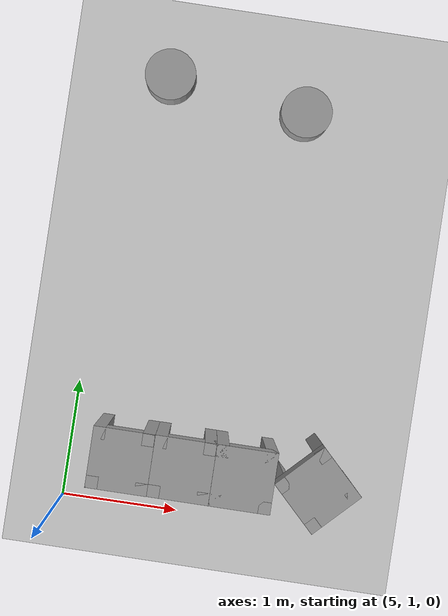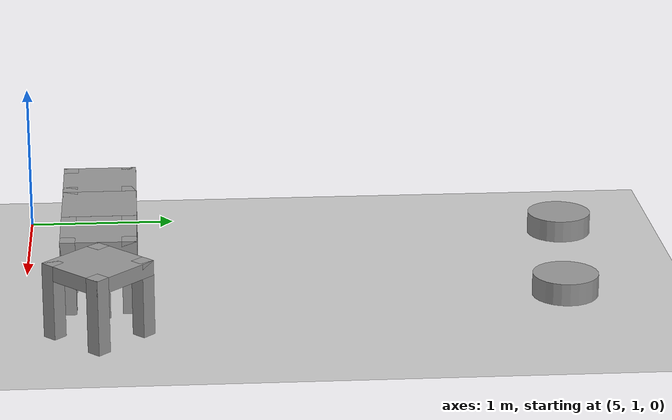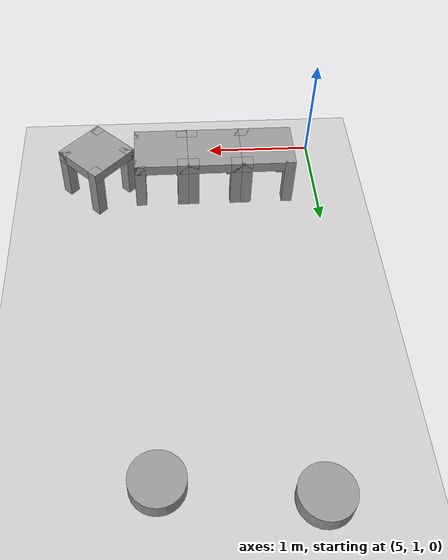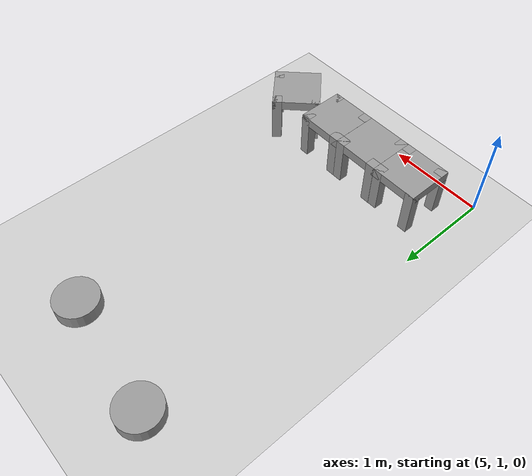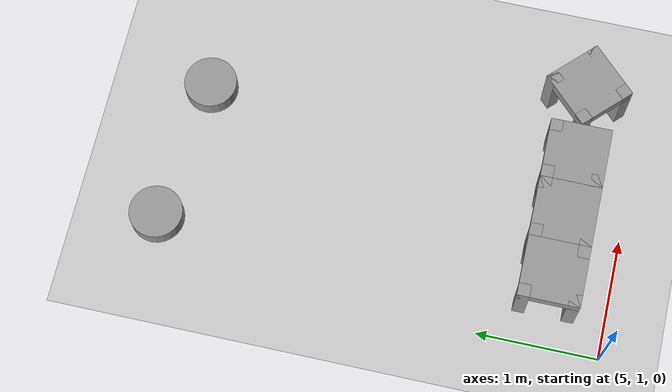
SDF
<sdf version="1.6">
 <world name="default">
  <model name="ground_plane">
   <pose>6.5 0 0 0 -0 0</pose>
   <static>1</static>
   <link name="link">
    <collision name="collision">
     <geometry><plane><normal>0 0 1</normal><size>100 100</size></plane></geometry>
     <surface>
      <contact><collide_bitmask>65535</collide_bitmask></contact>
      <friction><ode><mu>100</mu><mu2>50</mu2></ode></friction>
     </surface>
    </collision>
    <visual name="visual">
     <cast_shadows>0</cast_shadows>
     <geometry><plane><normal>0 0 1</normal><size>100 100</size></plane></geometry>
     <material>
      <script><uri>file://media/materials/scripts/gazebo.material</uri><name>Gazebo/Grey</name></script>
     </material>
    </visual>
   </link>
  </model>
  <model name="Untitled_12">
   <link name="link_0">
    <inertial>
     <mass>1</mass>
     <inertia><ixx>0.145833</ixx><ixy>0</ixy><ixz>0</ixz><iyy>0.145833</iyy><iyz>0</iyz><izz>0.125</izz></inertia>
    </inertial>
    <visual name="visual">
     <geometry><cylinder><radius>0.22</radius><length>0.15</length></cylinder></geometry>
     <material>
      <lighting>1</lighting>
      <script><uri>file://media/materials/scripts/gazebo.material</uri><name>Gazebo/Grey</name></script>
      <shader type="pixel"><normal_map>__default__</normal_map></shader>
      <ambient>0.3 0.3 0.3 1</ambient>
      <diffuse>0.7 0.7 0.7 1</diffuse>
      <specular>0.01 0.01 0.01 1</specular>
      <emissive>0 0 0 1</emissive>
     </material>
    </visual>
    <collision name="collision">
     <geometry><cylinder><radius>0.22</radius><length>0.15</length></cylinder></geometry>
     <surface>
      <friction>
       <ode><mu>1</mu><mu2>1</mu2><fdir1>0 0 0</fdir1><slip1>0</slip1><slip2>0</slip2></ode>
       <torsional>
        <coefficient>1</coefficient>
        <patch_radius>0</patch_radius>
        <surface_radius>0</surface_radius>
        <use_patch_radius>1</use_patch_radius>
        <ode><slip>0</slip></ode>
       </torsional>
      </friction>
      <bounce><restitution_coefficient>0</restitution_coefficient><threshold>1e+06</threshold></bounce>
      <contact>
       <collide_without_contact>0</collide_without_contact>
       <collide_without_contact_bitmask>1</collide_without_contact_bitmask>
       <collide_bitmask>1</collide_bitmask>
       <ode>
        <soft_cfm>0</soft_cfm>
        <soft_erp>0.2</soft_erp>
        <kp>1e+13</kp>
        <kd>1</kd>
        <max_vel>0.01</max_vel>
        <min_depth>0</min_depth>
       </ode>
       <bullet>
        <split_impulse>1</split_impulse>
        <split_impulse_penetration_threshold>-0.01</split_impulse_penetration_threshold>
        <soft_cfm>0</soft_cfm>
        <soft_erp>0.2</soft_erp>
        <kp>1e+13</kp>
        <kd>1</kd>
       </bullet>
      </contact>
     </surface>
    </collision>
   </link>
   <static>0</static>
   <pose>5.4 4.73003 0.074993 1e-06 1e-06 0</pose>
  </model>
  <model name="Untitled_13">
   <link name="link_0">
    <inertial>
     <mass>1</mass>
     <inertia><ixx>0.145833</ixx><ixy>0</ixy><ixz>0</ixz><iyy>0.145833</iyy><iyz>0</iyz><izz>0.125</izz></inertia>
    </inertial>
    <visual name="visual">
     <geometry><cylinder><radius>0.22</radius><length>0.15</length></cylinder></geometry>
     <material>
      <lighting>1</lighting>
      <script><uri>file://media/materials/scripts/gazebo.material</uri><name>Gazebo/Grey</name></script>
      <shader type="pixel"><normal_map>__default__</normal_map></shader>
      <ambient>0.3 0.3 0.3 1</ambient>
      <diffuse>0.7 0.7 0.7 1</diffuse>
      <specular>0.01 0.01 0.01 1</specular>
      <emissive>0 0 0 1</emissive>
     </material>
    </visual>
    <collision name="collision">
     <geometry><cylinder><radius>0.22</radius><length>0.15</length></cylinder></geometry>
     <surface>
      <friction>
       <ode><mu>1</mu><mu2>1</mu2><fdir1>0 0 0</fdir1><slip1>0</slip1><slip2>0</slip2></ode>
       <torsional>
        <coefficient>1</coefficient>
        <patch_radius>0</patch_radius>
        <surface_radius>0</surface_radius>
        <use_patch_radius>1</use_patch_radius>
        <ode><slip>0</slip></ode>
       </torsional>
      </friction>
      <bounce><restitution_coefficient>0</restitution_coefficient><threshold>1e+06</threshold></bounce>
      <contact>
       <collide_without_contact>0</collide_without_contact>
       <collide_without_contact_bitmask>1</collide_without_contact_bitmask>
       <collide_bitmask>1</collide_bitmask>
       <ode>
        <soft_cfm>0</soft_cfm>
        <soft_erp>0.2</soft_erp>
        <kp>1e+13</kp>
        <kd>1</kd>
        <max_vel>0.01</max_vel>
        <min_depth>0</min_depth>
       </ode>
       <bullet>
        <split_impulse>1</split_impulse>
        <split_impulse_penetration_threshold>-0.01</split_impulse_penetration_threshold>
        <soft_cfm>0</soft_cfm>
        <soft_erp>0.2</soft_erp>
        <kp>1e+13</kp>
        <kd>1</kd>
       </bullet>
      </contact>
     </surface>
    </collision>
   </link>
   <static>0</static>
   <pose>6.6 4.58228 0.074993 1e-06 1e-06 0</pose>
  </model>
  <model name="little_table_SF">
   <link name="link_0">
    <pose>-0.2 -0.2 -0.04 0 -0 0</pose>
    <inertial>
     <mass>1</mass>
     <inertia>
      <ixx>0.166667</ixx>
      <ixy>0</ixy>
      <ixz>0</ixz>
      <iyy>0.166667</iyy>
      <iyz>0</iyz>
      <izz>0.166667</izz>
     </inertia>
    </inertial>
    <visual name="visual">
     <geometry><box><size>0.1 0.1 0.5</size></box></geometry>
     <material>
      <lighting>1</lighting>
      <script><uri>file://media/materials/scripts/gazebo.material</uri><name>Gazebo/Grey</name></script>
      <shader type="pixel"><normal_map>__default__</normal_map></shader>
      <ambient>0.3 0.3 0.3 1</ambient>
      <diffuse>0.7 0.7 0.7 1</diffuse>
      <specular>0.01 0.01 0.01 1</specular>
      <emissive>0 0 0 1</emissive>
     </material>
    </visual>
    <collision name="collision">
     <geometry><box><size>0.1 0.1 0.5</size></box></geometry>
     <surface>
      <friction>
       <ode><mu>1</mu><mu2>1</mu2><fdir1>0 0 0</fdir1><slip1>0</slip1><slip2>0</slip2></ode>
       <torsional>
        <coefficient>1</coefficient>
        <patch_radius>0</patch_radius>
        <surface_radius>0</surface_radius>
        <use_patch_radius>1</use_patch_radius>
        <ode><slip>0</slip></ode>
       </torsional>
      </friction>
      <bounce><restitution_coefficient>0</restitution_coefficient><threshold>1e+06</threshold></bounce>
      <contact>
       <collide_without_contact>0</collide_without_contact>
       <collide_without_contact_bitmask>1</collide_without_contact_bitmask>
       <collide_bitmask>1</collide_bitmask>
       <ode>
        <soft_cfm>0</soft_cfm>
        <soft_erp>0.2</soft_erp>
        <kp>1e+13</kp>
        <kd>1</kd>
        <max_vel>0.01</max_vel>
        <min_depth>0</min_depth>
       </ode>
       <bullet>
        <split_impulse>1</split_impulse>
        <split_impulse_penetration_threshold>-0.01</split_impulse_penetration_threshold>
        <soft_cfm>0</soft_cfm>
        <soft_erp>0.2</soft_erp>
        <kp>1e+13</kp>
        <kd>1</kd>
       </bullet>
      </contact>
     </surface>
    </collision>
   </link>
   <link name="link_0_clone">
    <pose>0.2 -0.2 -0.04 0 -0 0</pose>
    <inertial>
     <mass>1</mass>
     <inertia>
      <ixx>0.166667</ixx>
      <ixy>0</ixy>
      <ixz>0</ixz>
      <iyy>0.166667</iyy>
      <iyz>0</iyz>
      <izz>0.166667</izz>
     </inertia>
    </inertial>
    <visual name="visual">
     <geometry><box><size>0.1 0.1 0.5</size></box></geometry>
     <material>
      <lighting>1</lighting>
      <script><uri>file://media/materials/scripts/gazebo.material</uri><name>Gazebo/Grey</name></script>
      <shader type="pixel"><normal_map>__default__</normal_map></shader>
      <ambient>0.3 0.3 0.3 1</ambient>
      <diffuse>0.7 0.7 0.7 1</diffuse>
      <specular>0.01 0.01 0.01 1</specular>
      <emissive>0 0 0 1</emissive>
     </material>
    </visual>
    <collision name="collision">
     <geometry><box><size>0.1 0.1 0.5</size></box></geometry>
     <surface>
      <friction>
       <ode><mu>1</mu><mu2>1</mu2><fdir1>0 0 0</fdir1><slip1>0</slip1><slip2>0</slip2></ode>
       <torsional>
        <coefficient>1</coefficient>
        <patch_radius>0</patch_radius>
        <surface_radius>0</surface_radius>
        <use_patch_radius>1</use_patch_radius>
        <ode><slip>0</slip></ode>
       </torsional>
      </friction>
      <bounce><restitution_coefficient>0</restitution_coefficient><threshold>1e+06</threshold></bounce>
      <contact>
       <collide_without_contact>0</collide_without_contact>
       <collide_without_contact_bitmask>1</collide_without_contact_bitmask>
       <collide_bitmask>1</collide_bitmask>
       <ode>
        <soft_cfm>0</soft_cfm>
        <soft_erp>0.2</soft_erp>
        <kp>1e+13</kp>
        <kd>1</kd>
        <max_vel>0.01</max_vel>
        <min_depth>0</min_depth>
       </ode>
       <bullet>
        <split_impulse>1</split_impulse>
        <split_impulse_penetration_threshold>-0.01</split_impulse_penetration_threshold>
        <soft_cfm>0</soft_cfm>
        <soft_erp>0.2</soft_erp>
        <kp>1e+13</kp>
        <kd>1</kd>
       </bullet>
      </contact>
     </surface>
    </collision>
   </link>
   <link name="link_0_clone_0">
    <pose>-0.2 0.2 -0.04 0 -0 0</pose>
    <inertial>
     <mass>1</mass>
     <inertia>
      <ixx>0.166667</ixx>
      <ixy>0</ixy>
      <ixz>0</ixz>
      <iyy>0.166667</iyy>
      <iyz>0</iyz>
      <izz>0.166667</izz>
     </inertia>
    </inertial>
    <visual name="visual">
     <geometry><box><size>0.1 0.1 0.5</size></box></geometry>
     <material>
      <lighting>1</lighting>
      <script><uri>file://media/materials/scripts/gazebo.material</uri><name>Gazebo/Grey</name></script>
      <shader type="pixel"><normal_map>__default__</normal_map></shader>
      <ambient>0.3 0.3 0.3 1</ambient>
      <diffuse>0.7 0.7 0.7 1</diffuse>
      <specular>0.01 0.01 0.01 1</specular>
      <emissive>0 0 0 1</emissive>
     </material>
    </visual>
    <collision name="collision">
     <geometry><box><size>0.1 0.1 0.5</size></box></geometry>
     <surface>
      <friction>
       <ode><mu>1</mu><mu2>1</mu2><fdir1>0 0 0</fdir1><slip1>0</slip1><slip2>0</slip2></ode>
       <torsional>
        <coefficient>1</coefficient>
        <patch_radius>0</patch_radius>
        <surface_radius>0</surface_radius>
        <use_patch_radius>1</use_patch_radius>
        <ode><slip>0</slip></ode>
       </torsional>
      </friction>
      <bounce><restitution_coefficient>0</restitution_coefficient><threshold>1e+06</threshold></bounce>
      <contact>
       <collide_without_contact>0</collide_without_contact>
       <collide_without_contact_bitmask>1</collide_without_contact_bitmask>
       <collide_bitmask>1</collide_bitmask>
       <ode>
        <soft_cfm>0</soft_cfm>
        <soft_erp>0.2</soft_erp>
        <kp>1e+13</kp>
        <kd>1</kd>
        <max_vel>0.01</max_vel>
        <min_depth>0</min_depth>
       </ode>
       <bullet>
        <split_impulse>1</split_impulse>
        <split_impulse_penetration_threshold>-0.01</split_impulse_penetration_threshold>
        <soft_cfm>0</soft_cfm>
        <soft_erp>0.2</soft_erp>
        <kp>1e+13</kp>
        <kd>1</kd>
       </bullet>
      </contact>
     </surface>
    </collision>
   </link>
   <link name="link_0_clone_1">
    <pose>0.2 0.2 -0.04 0 -0 0</pose>
    <inertial>
     <mass>1</mass>
     <inertia>
      <ixx>0.166667</ixx>
      <ixy>0</ixy>
      <ixz>0</ixz>
      <iyy>0.166667</iyy>
      <iyz>0</iyz>
      <izz>0.166667</izz>
     </inertia>
    </inertial>
    <visual name="visual">
     <geometry><box><size>0.1 0.1 0.5</size></box></geometry>
     <material>
      <lighting>1</lighting>
      <script><uri>file://media/materials/scripts/gazebo.material</uri><name>Gazebo/Grey</name></script>
      <shader type="pixel"><normal_map>__default__</normal_map></shader>
      <ambient>0.3 0.3 0.3 1</ambient>
      <diffuse>0.7 0.7 0.7 1</diffuse>
      <specular>0.01 0.01 0.01 1</specular>
      <emissive>0 0 0 1</emissive>
     </material>
    </visual>
    <collision name="collision">
     <geometry><box><size>0.1 0.1 0.5</size></box></geometry>
     <surface>
      <friction>
       <ode><mu>1</mu><mu2>1</mu2><fdir1>0 0 0</fdir1><slip1>0</slip1><slip2>0</slip2></ode>
       <torsional>
        <coefficient>1</coefficient>
        <patch_radius>0</patch_radius>
        <surface_radius>0</surface_radius>
        <use_patch_radius>1</use_patch_radius>
        <ode><slip>0</slip></ode>
       </torsional>
      </friction>
      <bounce><restitution_coefficient>0</restitution_coefficient><threshold>1e+06</threshold></bounce>
      <contact>
       <collide_without_contact>0</collide_without_contact>
       <collide_without_contact_bitmask>1</collide_without_contact_bitmask>
       <collide_bitmask>1</collide_bitmask>
       <ode>
        <soft_cfm>0</soft_cfm>
        <soft_erp>0.2</soft_erp>
        <kp>1e+13</kp>
        <kd>1</kd>
        <max_vel>0.01</max_vel>
        <min_depth>0</min_depth>
       </ode>
       <bullet>
        <split_impulse>1</split_impulse>
        <split_impulse_penetration_threshold>-0.01</split_impulse_penetration_threshold>
        <soft_cfm>0</soft_cfm>
        <soft_erp>0.2</soft_erp>
        <kp>1e+13</kp>
        <kd>1</kd>
       </bullet>
      </contact>
     </surface>
    </collision>
   </link>
   <link name="link_1">
    <pose>0 -0 0.16 0 -0 0</pose>
    <inertial>
     <mass>1</mass>
     <inertia>
      <ixx>0.166667</ixx>
      <ixy>0</ixy>
      <ixz>0</ixz>
      <iyy>0.166667</iyy>
      <iyz>0</iyz>
      <izz>0.166667</izz>
     </inertia>
    </inertial>
    <visual name="visual">
     <geometry><box><size>0.5 0.5 0.1</size></box></geometry>
     <material>
      <lighting>1</lighting>
      <script><uri>file://media/materials/scripts/gazebo.material</uri><name>Gazebo/Grey</name></script>
      <shader type="pixel"><normal_map>__default__</normal_map></shader>
      <ambient>0.3 0.3 0.3 1</ambient>
      <diffuse>0.7 0.7 0.7 1</diffuse>
      <specular>0.01 0.01 0.01 1</specular>
      <emissive>0 0 0 1</emissive>
     </material>
    </visual>
    <collision name="collision">
     <geometry><box><size>0.5 0.5 0.1</size></box></geometry>
     <surface>
      <friction>
       <ode><mu>1</mu><mu2>1</mu2><fdir1>0 0 0</fdir1><slip1>0</slip1><slip2>0</slip2></ode>
       <torsional>
        <coefficient>1</coefficient>
        <patch_radius>0</patch_radius>
        <surface_radius>0</surface_radius>
        <use_patch_radius>1</use_patch_radius>
        <ode><slip>0</slip></ode>
       </torsional>
      </friction>
      <bounce><restitution_coefficient>0</restitution_coefficient><threshold>1e+06</threshold></bounce>
      <contact>
       <collide_without_contact>0</collide_without_contact>
       <collide_without_contact_bitmask>1</collide_without_contact_bitmask>
       <collide_bitmask>1</collide_bitmask>
       <ode>
        <soft_cfm>0</soft_cfm>
        <soft_erp>0.2</soft_erp>
        <kp>1e+13</kp>
        <kd>1</kd>
        <max_vel>0.01</max_vel>
        <min_depth>0</min_depth>
       </ode>
       <bullet>
        <split_impulse>1</split_impulse>
        <split_impulse_penetration_threshold>-0.01</split_impulse_penetration_threshold>
        <soft_cfm>0</soft_cfm>
        <soft_erp>0.2</soft_erp>
        <kp>1e+13</kp>
        <kd>1</kd>
       </bullet>
      </contact>
     </surface>
    </collision>
   </link>
   <joint name="link_1_JOINT_0" type="fixed">
    <parent>link_1</parent>
    <child>link_0_clone_0</child>
    <physics>
     <ode><limit><cfm>0</cfm><erp>0.2</erp></limit><suspension><cfm>0</cfm><erp>0.2</erp></suspension></ode>
    </physics>
   </joint>
   <joint name="link_1_JOINT_1" type="fixed">
    <parent>link_1</parent>
    <child>link_0</child>
    <physics>
     <ode><limit><cfm>0</cfm><erp>0.2</erp></limit><suspension><cfm>0</cfm><erp>0.2</erp></suspension></ode>
    </physics>
   </joint>
   <joint name="link_1_JOINT_2" type="fixed">
    <parent>link_1</parent>
    <child>link_0_clone_1</child>
    <physics>
     <ode><limit><cfm>0</cfm><erp>0.2</erp></limit><suspension><cfm>0</cfm><erp>0.2</erp></suspension></ode>
    </physics>
   </joint>
   <joint name="link_1_JOINT_3" type="fixed">
    <parent>link_1</parent>
    <child>link_0_clone</child>
    <physics>
     <ode><limit><cfm>0</cfm><erp>0.2</erp></limit><suspension><cfm>0</cfm><erp>0.2</erp></suspension></ode>
    </physics>
   </joint>
   <static>1</static>
   <pose>5.49896 1.49964 0.29 1e-06 -1e-06 -2.2e-05</pose>
  </model>
  <model name="little_table_SF_clone">
   <link name="link_0">
    <pose>-0.2 -0.2 -0.04 0 -0 0</pose>
    <inertial>
     <mass>1</mass>
     <inertia>
      <ixx>0.166667</ixx>
      <ixy>0</ixy>
      <ixz>0</ixz>
      <iyy>0.166667</iyy>
      <iyz>0</iyz>
      <izz>0.166667</izz>
     </inertia>
    </inertial>
    <visual name="visual">
     <geometry><box><size>0.1 0.1 0.5</size></box></geometry>
     <material>
      <lighting>1</lighting>
      <script><uri>file://media/materials/scripts/gazebo.material</uri><name>Gazebo/Grey</name></script>
      <shader type="pixel"><normal_map>__default__</normal_map></shader>
      <ambient>0.3 0.3 0.3 1</ambient>
      <diffuse>0.7 0.7 0.7 1</diffuse>
      <specular>0.01 0.01 0.01 1</specular>
      <emissive>0 0 0 1</emissive>
     </material>
    </visual>
    <collision name="collision">
     <geometry><box><size>0.1 0.1 0.5</size></box></geometry>
     <surface>
      <friction>
       <ode><mu>1</mu><mu2>1</mu2><fdir1>0 0 0</fdir1><slip1>0</slip1><slip2>0</slip2></ode>
       <torsional>
        <coefficient>1</coefficient>
        <patch_radius>0</patch_radius>
        <surface_radius>0</surface_radius>
        <use_patch_radius>1</use_patch_radius>
        <ode><slip>0</slip></ode>
       </torsional>
      </friction>
      <bounce><restitution_coefficient>0</restitution_coefficient><threshold>1e+06</threshold></bounce>
      <contact>
       <collide_without_contact>0</collide_without_contact>
       <collide_without_contact_bitmask>1</collide_without_contact_bitmask>
       <collide_bitmask>1</collide_bitmask>
       <ode>
        <soft_cfm>0</soft_cfm>
        <soft_erp>0.2</soft_erp>
        <kp>1e+13</kp>
        <kd>1</kd>
        <max_vel>0.01</max_vel>
        <min_depth>0</min_depth>
       </ode>
       <bullet>
        <split_impulse>1</split_impulse>
        <split_impulse_penetration_threshold>-0.01</split_impulse_penetration_threshold>
        <soft_cfm>0</soft_cfm>
        <soft_erp>0.2</soft_erp>
        <kp>1e+13</kp>
        <kd>1</kd>
       </bullet>
      </contact>
     </surface>
    </collision>
   </link>
   <link name="link_0_clone">
    <pose>0.2 -0.2 -0.04 0 -0 0</pose>
    <inertial>
     <mass>1</mass>
     <inertia>
      <ixx>0.166667</ixx>
      <ixy>0</ixy>
      <ixz>0</ixz>
      <iyy>0.166667</iyy>
      <iyz>0</iyz>
      <izz>0.166667</izz>
     </inertia>
    </inertial>
    <visual name="visual">
     <geometry><box><size>0.1 0.1 0.5</size></box></geometry>
     <material>
      <lighting>1</lighting>
      <script><uri>file://media/materials/scripts/gazebo.material</uri><name>Gazebo/Grey</name></script>
      <shader type="pixel"><normal_map>__default__</normal_map></shader>
      <ambient>0.3 0.3 0.3 1</ambient>
      <diffuse>0.7 0.7 0.7 1</diffuse>
      <specular>0.01 0.01 0.01 1</specular>
      <emissive>0 0 0 1</emissive>
     </material>
    </visual>
    <collision name="collision">
     <geometry><box><size>0.1 0.1 0.5</size></box></geometry>
     <surface>
      <friction>
       <ode><mu>1</mu><mu2>1</mu2><fdir1>0 0 0</fdir1><slip1>0</slip1><slip2>0</slip2></ode>
       <torsional>
        <coefficient>1</coefficient>
        <patch_radius>0</patch_radius>
        <surface_radius>0</surface_radius>
        <use_patch_radius>1</use_patch_radius>
        <ode><slip>0</slip></ode>
       </torsional>
      </friction>
      <bounce><restitution_coefficient>0</restitution_coefficient><threshold>1e+06</threshold></bounce>
      <contact>
       <collide_without_contact>0</collide_without_contact>
       <collide_without_contact_bitmask>1</collide_without_contact_bitmask>
       <collide_bitmask>1</collide_bitmask>
       <ode>
        <soft_cfm>0</soft_cfm>
        <soft_erp>0.2</soft_erp>
        <kp>1e+13</kp>
        <kd>1</kd>
        <max_vel>0.01</max_vel>
        <min_depth>0</min_depth>
       </ode>
       <bullet>
        <split_impulse>1</split_impulse>
        <split_impulse_penetration_threshold>-0.01</split_impulse_penetration_threshold>
        <soft_cfm>0</soft_cfm>
        <soft_erp>0.2</soft_erp>
        <kp>1e+13</kp>
        <kd>1</kd>
       </bullet>
      </contact>
     </surface>
    </collision>
   </link>
   <link name="link_0_clone_0">
    <pose>-0.2 0.2 -0.04 0 -0 0</pose>
    <inertial>
     <mass>1</mass>
     <inertia>
      <ixx>0.166667</ixx>
      <ixy>0</ixy>
      <ixz>0</ixz>
      <iyy>0.166667</iyy>
      <iyz>0</iyz>
      <izz>0.166667</izz>
     </inertia>
    </inertial>
    <visual name="visual">
     <geometry><box><size>0.1 0.1 0.5</size></box></geometry>
     <material>
      <lighting>1</lighting>
      <script><uri>file://media/materials/scripts/gazebo.material</uri><name>Gazebo/Grey</name></script>
      <shader type="pixel"><normal_map>__default__</normal_map></shader>
      <ambient>0.3 0.3 0.3 1</ambient>
      <diffuse>0.7 0.7 0.7 1</diffuse>
      <specular>0.01 0.01 0.01 1</specular>
      <emissive>0 0 0 1</emissive>
     </material>
    </visual>
    <collision name="collision">
     <geometry><box><size>0.1 0.1 0.5</size></box></geometry>
     <surface>
      <friction>
       <ode><mu>1</mu><mu2>1</mu2><fdir1>0 0 0</fdir1><slip1>0</slip1><slip2>0</slip2></ode>
       <torsional>
        <coefficient>1</coefficient>
        <patch_radius>0</patch_radius>
        <surface_radius>0</surface_radius>
        <use_patch_radius>1</use_patch_radius>
        <ode><slip>0</slip></ode>
       </torsional>
      </friction>
      <bounce><restitution_coefficient>0</restitution_coefficient><threshold>1e+06</threshold></bounce>
      <contact>
       <collide_without_contact>0</collide_without_contact>
       <collide_without_contact_bitmask>1</collide_without_contact_bitmask>
       <collide_bitmask>1</collide_bitmask>
       <ode>
        <soft_cfm>0</soft_cfm>
        <soft_erp>0.2</soft_erp>
        <kp>1e+13</kp>
        <kd>1</kd>
        <max_vel>0.01</max_vel>
        <min_depth>0</min_depth>
       </ode>
       <bullet>
        <split_impulse>1</split_impulse>
        <split_impulse_penetration_threshold>-0.01</split_impulse_penetration_threshold>
        <soft_cfm>0</soft_cfm>
        <soft_erp>0.2</soft_erp>
        <kp>1e+13</kp>
        <kd>1</kd>
       </bullet>
      </contact>
     </surface>
    </collision>
   </link>
   <link name="link_0_clone_1">
    <pose>0.2 0.2 -0.04 0 -0 0</pose>
    <inertial>
     <mass>1</mass>
     <inertia>
      <ixx>0.166667</ixx>
      <ixy>0</ixy>
      <ixz>0</ixz>
      <iyy>0.166667</iyy>
      <iyz>0</iyz>
      <izz>0.166667</izz>
     </inertia>
    </inertial>
    <visual name="visual">
     <geometry><box><size>0.1 0.1 0.5</size></box></geometry>
     <material>
      <lighting>1</lighting>
      <script><uri>file://media/materials/scripts/gazebo.material</uri><name>Gazebo/Grey</name></script>
      <shader type="pixel"><normal_map>__default__</normal_map></shader>
      <ambient>0.3 0.3 0.3 1</ambient>
      <diffuse>0.7 0.7 0.7 1</diffuse>
      <specular>0.01 0.01 0.01 1</specular>
      <emissive>0 0 0 1</emissive>
     </material>
    </visual>
    <collision name="collision">
     <geometry><box><size>0.1 0.1 0.5</size></box></geometry>
     <surface>
      <friction>
       <ode><mu>1</mu><mu2>1</mu2><fdir1>0 0 0</fdir1><slip1>0</slip1><slip2>0</slip2></ode>
       <torsional>
        <coefficient>1</coefficient>
        <patch_radius>0</patch_radius>
        <surface_radius>0</surface_radius>
        <use_patch_radius>1</use_patch_radius>
        <ode><slip>0</slip></ode>
       </torsional>
      </friction>
      <bounce><restitution_coefficient>0</restitution_coefficient><threshold>1e+06</threshold></bounce>
      <contact>
       <collide_without_contact>0</collide_without_contact>
       <collide_without_contact_bitmask>1</collide_without_contact_bitmask>
       <collide_bitmask>1</collide_bitmask>
       <ode>
        <soft_cfm>0</soft_cfm>
        <soft_erp>0.2</soft_erp>
        <kp>1e+13</kp>
        <kd>1</kd>
        <max_vel>0.01</max_vel>
        <min_depth>0</min_depth>
       </ode>
       <bullet>
        <split_impulse>1</split_impulse>
        <split_impulse_penetration_threshold>-0.01</split_impulse_penetration_threshold>
        <soft_cfm>0</soft_cfm>
        <soft_erp>0.2</soft_erp>
        <kp>1e+13</kp>
        <kd>1</kd>
       </bullet>
      </contact>
     </surface>
    </collision>
   </link>
   <link name="link_1">
    <pose>0 -0 0.16 0 -0 0</pose>
    <inertial>
     <mass>1</mass>
     <inertia>
      <ixx>0.166667</ixx>
      <ixy>0</ixy>
      <ixz>0</ixz>
      <iyy>0.166667</iyy>
      <iyz>0</iyz>
      <izz>0.166667</izz>
     </inertia>
    </inertial>
    <visual name="visual">
     <geometry><box><size>0.5 0.5 0.1</size></box></geometry>
     <material>
      <lighting>1</lighting>
      <script><uri>file://media/materials/scripts/gazebo.material</uri><name>Gazebo/Grey</name></script>
      <shader type="pixel"><normal_map>__default__</normal_map></shader>
      <ambient>0.3 0.3 0.3 1</ambient>
      <diffuse>0.7 0.7 0.7 1</diffuse>
      <specular>0.01 0.01 0.01 1</specular>
      <emissive>0 0 0 1</emissive>
     </material>
    </visual>
    <collision name="collision">
     <geometry><box><size>0.5 0.5 0.1</size></box></geometry>
     <surface>
      <friction>
       <ode><mu>1</mu><mu2>1</mu2><fdir1>0 0 0</fdir1><slip1>0</slip1><slip2>0</slip2></ode>
       <torsional>
        <coefficient>1</coefficient>
        <patch_radius>0</patch_radius>
        <surface_radius>0</surface_radius>
        <use_patch_radius>1</use_patch_radius>
        <ode><slip>0</slip></ode>
       </torsional>
      </friction>
      <bounce><restitution_coefficient>0</restitution_coefficient><threshold>1e+06</threshold></bounce>
      <contact>
       <collide_without_contact>0</collide_without_contact>
       <collide_without_contact_bitmask>1</collide_without_contact_bitmask>
       <collide_bitmask>1</collide_bitmask>
       <ode>
        <soft_cfm>0</soft_cfm>
        <soft_erp>0.2</soft_erp>
        <kp>1e+13</kp>
        <kd>1</kd>
        <max_vel>0.01</max_vel>
        <min_depth>0</min_depth>
       </ode>
       <bullet>
        <split_impulse>1</split_impulse>
        <split_impulse_penetration_threshold>-0.01</split_impulse_penetration_threshold>
        <soft_cfm>0</soft_cfm>
        <soft_erp>0.2</soft_erp>
        <kp>1e+13</kp>
        <kd>1</kd>
       </bullet>
      </contact>
     </surface>
    </collision>
   </link>
   <joint name="link_1_JOINT_0" type="fixed">
    <parent>link_1</parent>
    <child>link_0_clone_0</child>
    <physics>
     <ode><limit><cfm>0</cfm><erp>0.2</erp></limit><suspension><cfm>0</cfm><erp>0.2</erp></suspension></ode>
    </physics>
   </joint>
   <joint name="link_1_JOINT_1" type="fixed">
    <parent>link_1</parent>
    <child>link_0</child>
    <physics>
     <ode><limit><cfm>0</cfm><erp>0.2</erp></limit><suspension><cfm>0</cfm><erp>0.2</erp></suspension></ode>
    </physics>
   </joint>
   <joint name="link_1_JOINT_2" type="fixed">
    <parent>link_1</parent>
    <child>link_0_clone_1</child>
    <physics>
     <ode><limit><cfm>0</cfm><erp>0.2</erp></limit><suspension><cfm>0</cfm><erp>0.2</erp></suspension></ode>
    </physics>
   </joint>
   <joint name="link_1_JOINT_3" type="fixed">
    <parent>link_1</parent>
    <child>link_0_clone</child>
    <physics>
     <ode><limit><cfm>0</cfm><erp>0.2</erp></limit><suspension><cfm>0</cfm><erp>0.2</erp></suspension></ode>
    </physics>
   </joint>
   <static>1</static>
   <pose>5.99911 1.50047 0.29 1e-06 -1e-06 -0.000652</pose>
  </model>
  <model name="little_table_SF_clone_clone">
   <link name="link_0">
    <pose>-0.2 -0.2 -0.04 0 -0 0</pose>
    <inertial>
     <mass>1</mass>
     <inertia>
      <ixx>0.166667</ixx>
      <ixy>0</ixy>
      <ixz>0</ixz>
      <iyy>0.166667</iyy>
      <iyz>0</iyz>
      <izz>0.166667</izz>
     </inertia>
    </inertial>
    <visual name="visual">
     <geometry><box><size>0.1 0.1 0.5</size></box></geometry>
     <material>
      <lighting>1</lighting>
      <script><uri>file://media/materials/scripts/gazebo.material</uri><name>Gazebo/Grey</name></script>
      <shader type="pixel"><normal_map>__default__</normal_map></shader>
      <ambient>0.3 0.3 0.3 1</ambient>
      <diffuse>0.7 0.7 0.7 1</diffuse>
      <specular>0.01 0.01 0.01 1</specular>
      <emissive>0 0 0 1</emissive>
     </material>
    </visual>
    <collision name="collision">
     <geometry><box><size>0.1 0.1 0.5</size></box></geometry>
     <surface>
      <friction>
       <ode><mu>1</mu><mu2>1</mu2><fdir1>0 0 0</fdir1><slip1>0</slip1><slip2>0</slip2></ode>
       <torsional>
        <coefficient>1</coefficient>
        <patch_radius>0</patch_radius>
        <surface_radius>0</surface_radius>
        <use_patch_radius>1</use_patch_radius>
        <ode><slip>0</slip></ode>
       </torsional>
      </friction>
      <bounce><restitution_coefficient>0</restitution_coefficient><threshold>1e+06</threshold></bounce>
      <contact>
       <collide_without_contact>0</collide_without_contact>
       <collide_without_contact_bitmask>1</collide_without_contact_bitmask>
       <collide_bitmask>1</collide_bitmask>
       <ode>
        <soft_cfm>0</soft_cfm>
        <soft_erp>0.2</soft_erp>
        <kp>1e+13</kp>
        <kd>1</kd>
        <max_vel>0.01</max_vel>
        <min_depth>0</min_depth>
       </ode>
       <bullet>
        <split_impulse>1</split_impulse>
        <split_impulse_penetration_threshold>-0.01</split_impulse_penetration_threshold>
        <soft_cfm>0</soft_cfm>
        <soft_erp>0.2</soft_erp>
        <kp>1e+13</kp>
        <kd>1</kd>
       </bullet>
      </contact>
     </surface>
    </collision>
   </link>
   <link name="link_0_clone">
    <pose>0.2 -0.2 -0.04 0 -0 0</pose>
    <inertial>
     <mass>1</mass>
     <inertia>
      <ixx>0.166667</ixx>
      <ixy>0</ixy>
      <ixz>0</ixz>
      <iyy>0.166667</iyy>
      <iyz>0</iyz>
      <izz>0.166667</izz>
     </inertia>
    </inertial>
    <visual name="visual">
     <geometry><box><size>0.1 0.1 0.5</size></box></geometry>
     <material>
      <lighting>1</lighting>
      <script><uri>file://media/materials/scripts/gazebo.material</uri><name>Gazebo/Grey</name></script>
      <shader type="pixel"><normal_map>__default__</normal_map></shader>
      <ambient>0.3 0.3 0.3 1</ambient>
      <diffuse>0.7 0.7 0.7 1</diffuse>
      <specular>0.01 0.01 0.01 1</specular>
      <emissive>0 0 0 1</emissive>
     </material>
    </visual>
    <collision name="collision">
     <geometry><box><size>0.1 0.1 0.5</size></box></geometry>
     <surface>
      <friction>
       <ode><mu>1</mu><mu2>1</mu2><fdir1>0 0 0</fdir1><slip1>0</slip1><slip2>0</slip2></ode>
       <torsional>
        <coefficient>1</coefficient>
        <patch_radius>0</patch_radius>
        <surface_radius>0</surface_radius>
        <use_patch_radius>1</use_patch_radius>
        <ode><slip>0</slip></ode>
       </torsional>
      </friction>
      <bounce><restitution_coefficient>0</restitution_coefficient><threshold>1e+06</threshold></bounce>
      <contact>
       <collide_without_contact>0</collide_without_contact>
       <collide_without_contact_bitmask>1</collide_without_contact_bitmask>
       <collide_bitmask>1</collide_bitmask>
       <ode>
        <soft_cfm>0</soft_cfm>
        <soft_erp>0.2</soft_erp>
        <kp>1e+13</kp>
        <kd>1</kd>
        <max_vel>0.01</max_vel>
        <min_depth>0</min_depth>
       </ode>
       <bullet>
        <split_impulse>1</split_impulse>
        <split_impulse_penetration_threshold>-0.01</split_impulse_penetration_threshold>
        <soft_cfm>0</soft_cfm>
        <soft_erp>0.2</soft_erp>
        <kp>1e+13</kp>
        <kd>1</kd>
       </bullet>
      </contact>
     </surface>
    </collision>
   </link>
   <link name="link_0_clone_0">
    <pose>-0.2 0.2 -0.04 0 -0 0</pose>
    <inertial>
     <mass>1</mass>
     <inertia>
      <ixx>0.166667</ixx>
      <ixy>0</ixy>
      <ixz>0</ixz>
      <iyy>0.166667</iyy>
      <iyz>0</iyz>
      <izz>0.166667</izz>
     </inertia>
    </inertial>
    <visual name="visual">
     <geometry><box><size>0.1 0.1 0.5</size></box></geometry>
     <material>
      <lighting>1</lighting>
      <script><uri>file://media/materials/scripts/gazebo.material</uri><name>Gazebo/Grey</name></script>
      <shader type="pixel"><normal_map>__default__</normal_map></shader>
      <ambient>0.3 0.3 0.3 1</ambient>
      <diffuse>0.7 0.7 0.7 1</diffuse>
      <specular>0.01 0.01 0.01 1</specular>
      <emissive>0 0 0 1</emissive>
     </material>
    </visual>
    <collision name="collision">
     <geometry><box><size>0.1 0.1 0.5</size></box></geometry>
     <surface>
      <friction>
       <ode><mu>1</mu><mu2>1</mu2><fdir1>0 0 0</fdir1><slip1>0</slip1><slip2>0</slip2></ode>
       <torsional>
        <coefficient>1</coefficient>
        <patch_radius>0</patch_radius>
        <surface_radius>0</surface_radius>
        <use_patch_radius>1</use_patch_radius>
        <ode><slip>0</slip></ode>
       </torsional>
      </friction>
      <bounce><restitution_coefficient>0</restitution_coefficient><threshold>1e+06</threshold></bounce>
      <contact>
       <collide_without_contact>0</collide_without_contact>
       <collide_without_contact_bitmask>1</collide_without_contact_bitmask>
       <collide_bitmask>1</collide_bitmask>
       <ode>
        <soft_cfm>0</soft_cfm>
        <soft_erp>0.2</soft_erp>
        <kp>1e+13</kp>
        <kd>1</kd>
        <max_vel>0.01</max_vel>
        <min_depth>0</min_depth>
       </ode>
       <bullet>
        <split_impulse>1</split_impulse>
        <split_impulse_penetration_threshold>-0.01</split_impulse_penetration_threshold>
        <soft_cfm>0</soft_cfm>
        <soft_erp>0.2</soft_erp>
        <kp>1e+13</kp>
        <kd>1</kd>
       </bullet>
      </contact>
     </surface>
    </collision>
   </link>
   <link name="link_0_clone_1">
    <pose>0.2 0.2 -0.04 0 -0 0</pose>
    <inertial>
     <mass>1</mass>
     <inertia>
      <ixx>0.166667</ixx>
      <ixy>0</ixy>
      <ixz>0</ixz>
      <iyy>0.166667</iyy>
      <iyz>0</iyz>
      <izz>0.166667</izz>
     </inertia>
    </inertial>
    <visual name="visual">
     <geometry><box><size>0.1 0.1 0.5</size></box></geometry>
     <material>
      <lighting>1</lighting>
      <script><uri>file://media/materials/scripts/gazebo.material</uri><name>Gazebo/Grey</name></script>
      <shader type="pixel"><normal_map>__default__</normal_map></shader>
      <ambient>0.3 0.3 0.3 1</ambient>
      <diffuse>0.7 0.7 0.7 1</diffuse>
      <specular>0.01 0.01 0.01 1</specular>
      <emissive>0 0 0 1</emissive>
     </material>
    </visual>
    <collision name="collision">
     <geometry><box><size>0.1 0.1 0.5</size></box></geometry>
     <surface>
      <friction>
       <ode><mu>1</mu><mu2>1</mu2><fdir1>0 0 0</fdir1><slip1>0</slip1><slip2>0</slip2></ode>
       <torsional>
        <coefficient>1</coefficient>
        <patch_radius>0</patch_radius>
        <surface_radius>0</surface_radius>
        <use_patch_radius>1</use_patch_radius>
        <ode><slip>0</slip></ode>
       </torsional>
      </friction>
      <bounce><restitution_coefficient>0</restitution_coefficient><threshold>1e+06</threshold></bounce>
      <contact>
       <collide_without_contact>0</collide_without_contact>
       <collide_without_contact_bitmask>1</collide_without_contact_bitmask>
       <collide_bitmask>1</collide_bitmask>
       <ode>
        <soft_cfm>0</soft_cfm>
        <soft_erp>0.2</soft_erp>
        <kp>1e+13</kp>
        <kd>1</kd>
        <max_vel>0.01</max_vel>
        <min_depth>0</min_depth>
       </ode>
       <bullet>
        <split_impulse>1</split_impulse>
        <split_impulse_penetration_threshold>-0.01</split_impulse_penetration_threshold>
        <soft_cfm>0</soft_cfm>
        <soft_erp>0.2</soft_erp>
        <kp>1e+13</kp>
        <kd>1</kd>
       </bullet>
      </contact>
     </surface>
    </collision>
   </link>
   <link name="link_1">
    <pose>-0 -0 0.16 0 -0 0</pose>
    <inertial>
     <mass>1</mass>
     <inertia>
      <ixx>0.166667</ixx>
      <ixy>0</ixy>
      <ixz>0</ixz>
      <iyy>0.166667</iyy>
      <iyz>0</iyz>
      <izz>0.166667</izz>
     </inertia>
    </inertial>
    <visual name="visual">
     <geometry><box><size>0.5 0.5 0.1</size></box></geometry>
     <material>
      <lighting>1</lighting>
      <script><uri>file://media/materials/scripts/gazebo.material</uri><name>Gazebo/Grey</name></script>
      <shader type="pixel"><normal_map>__default__</normal_map></shader>
      <ambient>0.3 0.3 0.3 1</ambient>
      <diffuse>0.7 0.7 0.7 1</diffuse>
      <specular>0.01 0.01 0.01 1</specular>
      <emissive>0 0 0 1</emissive>
     </material>
    </visual>
    <collision name="collision">
     <geometry><box><size>0.5 0.5 0.1</size></box></geometry>
     <surface>
      <friction>
       <ode><mu>1</mu><mu2>1</mu2><fdir1>0 0 0</fdir1><slip1>0</slip1><slip2>0</slip2></ode>
       <torsional>
        <coefficient>1</coefficient>
        <patch_radius>0</patch_radius>
        <surface_radius>0</surface_radius>
        <use_patch_radius>1</use_patch_radius>
        <ode><slip>0</slip></ode>
       </torsional>
      </friction>
      <bounce><restitution_coefficient>0</restitution_coefficient><threshold>1e+06</threshold></bounce>
      <contact>
       <collide_without_contact>0</collide_without_contact>
       <collide_without_contact_bitmask>1</collide_without_contact_bitmask>
       <collide_bitmask>1</collide_bitmask>
       <ode>
        <soft_cfm>0</soft_cfm>
        <soft_erp>0.2</soft_erp>
        <kp>1e+13</kp>
        <kd>1</kd>
        <max_vel>0.01</max_vel>
        <min_depth>0</min_depth>
       </ode>
       <bullet>
        <split_impulse>1</split_impulse>
        <split_impulse_penetration_threshold>-0.01</split_impulse_penetration_threshold>
        <soft_cfm>0</soft_cfm>
        <soft_erp>0.2</soft_erp>
        <kp>1e+13</kp>
        <kd>1</kd>
       </bullet>
      </contact>
     </surface>
    </collision>
   </link>
   <joint name="link_1_JOINT_0" type="fixed">
    <parent>link_1</parent>
    <child>link_0_clone_0</child>
    <physics>
     <ode><limit><cfm>0</cfm><erp>0.2</erp></limit><suspension><cfm>0</cfm><erp>0.2</erp></suspension></ode>
    </physics>
   </joint>
   <joint name="link_1_JOINT_1" type="fixed">
    <parent>link_1</parent>
    <child>link_0</child>
    <physics>
     <ode><limit><cfm>0</cfm><erp>0.2</erp></limit><suspension><cfm>0</cfm><erp>0.2</erp></suspension></ode>
    </physics>
   </joint>
   <joint name="link_1_JOINT_2" type="fixed">
    <parent>link_1</parent>
    <child>link_0_clone_1</child>
    <physics>
     <ode><limit><cfm>0</cfm><erp>0.2</erp></limit><suspension><cfm>0</cfm><erp>0.2</erp></suspension></ode>
    </physics>
   </joint>
   <joint name="link_1_JOINT_3" type="fixed">
    <parent>link_1</parent>
    <child>link_0_clone</child>
    <physics>
     <ode><limit><cfm>0</cfm><erp>0.2</erp></limit><suspension><cfm>0</cfm><erp>0.2</erp></suspension></ode>
    </physics>
   </joint>
   <static>1</static>
   <pose>6.49945 1.50008 0.29 1e-06 1e-06 -0.000425</pose>
  </model>
  <model name="little_table_SF_clone_0">
   <link name="link_0">
    <pose>-0.2 -0.2 -0.04 0 -0 0</pose>
    <inertial>
     <mass>1</mass>
     <inertia>
      <ixx>0.166667</ixx>
      <ixy>0</ixy>
      <ixz>0</ixz>
      <iyy>0.166667</iyy>
      <iyz>0</iyz>
      <izz>0.166667</izz>
     </inertia>
    </inertial>
    <visual name="visual">
     <geometry><box><size>0.1 0.1 0.5</size></box></geometry>
     <material>
      <lighting>1</lighting>
      <script><uri>file://media/materials/scripts/gazebo.material</uri><name>Gazebo/Grey</name></script>
      <shader type="pixel"><normal_map>__default__</normal_map></shader>
      <ambient>0.3 0.3 0.3 1</ambient>
      <diffuse>0.7 0.7 0.7 1</diffuse>
      <specular>0.01 0.01 0.01 1</specular>
      <emissive>0 0 0 1</emissive>
     </material>
    </visual>
    <collision name="collision">
     <geometry><box><size>0.1 0.1 0.5</size></box></geometry>
     <surface>
      <friction>
       <ode><mu>1</mu><mu2>1</mu2><fdir1>0 0 0</fdir1><slip1>0</slip1><slip2>0</slip2></ode>
       <torsional>
        <coefficient>1</coefficient>
        <patch_radius>0</patch_radius>
        <surface_radius>0</surface_radius>
        <use_patch_radius>1</use_patch_radius>
        <ode><slip>0</slip></ode>
       </torsional>
      </friction>
      <bounce><restitution_coefficient>0</restitution_coefficient><threshold>1e+06</threshold></bounce>
      <contact>
       <collide_without_contact>0</collide_without_contact>
       <collide_without_contact_bitmask>1</collide_without_contact_bitmask>
       <collide_bitmask>1</collide_bitmask>
       <ode>
        <soft_cfm>0</soft_cfm>
        <soft_erp>0.2</soft_erp>
        <kp>1e+13</kp>
        <kd>1</kd>
        <max_vel>0.01</max_vel>
        <min_depth>0</min_depth>
       </ode>
       <bullet>
        <split_impulse>1</split_impulse>
        <split_impulse_penetration_threshold>-0.01</split_impulse_penetration_threshold>
        <soft_cfm>0</soft_cfm>
        <soft_erp>0.2</soft_erp>
        <kp>1e+13</kp>
        <kd>1</kd>
       </bullet>
      </contact>
     </surface>
    </collision>
   </link>
   <link name="link_0_clone">
    <pose>0.2 -0.2 -0.04 0 -0 0</pose>
    <inertial>
     <mass>1</mass>
     <inertia>
      <ixx>0.166667</ixx>
      <ixy>0</ixy>
      <ixz>0</ixz>
      <iyy>0.166667</iyy>
      <iyz>0</iyz>
      <izz>0.166667</izz>
     </inertia>
    </inertial>
    <visual name="visual">
     <geometry><box><size>0.1 0.1 0.5</size></box></geometry>
     <material>
      <lighting>1</lighting>
      <script><uri>file://media/materials/scripts/gazebo.material</uri><name>Gazebo/Grey</name></script>
      <shader type="pixel"><normal_map>__default__</normal_map></shader>
      <ambient>0.3 0.3 0.3 1</ambient>
      <diffuse>0.7 0.7 0.7 1</diffuse>
      <specular>0.01 0.01 0.01 1</specular>
      <emissive>0 0 0 1</emissive>
     </material>
    </visual>
    <collision name="collision">
     <geometry><box><size>0.1 0.1 0.5</size></box></geometry>
     <surface>
      <friction>
       <ode><mu>1</mu><mu2>1</mu2><fdir1>0 0 0</fdir1><slip1>0</slip1><slip2>0</slip2></ode>
       <torsional>
        <coefficient>1</coefficient>
        <patch_radius>0</patch_radius>
        <surface_radius>0</surface_radius>
        <use_patch_radius>1</use_patch_radius>
        <ode><slip>0</slip></ode>
       </torsional>
      </friction>
      <bounce><restitution_coefficient>0</restitution_coefficient><threshold>1e+06</threshold></bounce>
      <contact>
       <collide_without_contact>0</collide_without_contact>
       <collide_without_contact_bitmask>1</collide_without_contact_bitmask>
       <collide_bitmask>1</collide_bitmask>
       <ode>
        <soft_cfm>0</soft_cfm>
        <soft_erp>0.2</soft_erp>
        <kp>1e+13</kp>
        <kd>1</kd>
        <max_vel>0.01</max_vel>
        <min_depth>0</min_depth>
       </ode>
       <bullet>
        <split_impulse>1</split_impulse>
        <split_impulse_penetration_threshold>-0.01</split_impulse_penetration_threshold>
        <soft_cfm>0</soft_cfm>
        <soft_erp>0.2</soft_erp>
        <kp>1e+13</kp>
        <kd>1</kd>
       </bullet>
      </contact>
     </surface>
    </collision>
   </link>
   <link name="link_0_clone_0">
    <pose>-0.2 0.2 -0.04 0 -0 0</pose>
    <inertial>
     <mass>1</mass>
     <inertia>
      <ixx>0.166667</ixx>
      <ixy>0</ixy>
      <ixz>0</ixz>
      <iyy>0.166667</iyy>
      <iyz>0</iyz>
      <izz>0.166667</izz>
     </inertia>
    </inertial>
    <visual name="visual">
     <geometry><box><size>0.1 0.1 0.5</size></box></geometry>
     <material>
      <lighting>1</lighting>
      <script><uri>file://media/materials/scripts/gazebo.material</uri><name>Gazebo/Grey</name></script>
      <shader type="pixel"><normal_map>__default__</normal_map></shader>
      <ambient>0.3 0.3 0.3 1</ambient>
      <diffuse>0.7 0.7 0.7 1</diffuse>
      <specular>0.01 0.01 0.01 1</specular>
      <emissive>0 0 0 1</emissive>
     </material>
    </visual>
    <collision name="collision">
     <geometry><box><size>0.1 0.1 0.5</size></box></geometry>
     <surface>
      <friction>
       <ode><mu>1</mu><mu2>1</mu2><fdir1>0 0 0</fdir1><slip1>0</slip1><slip2>0</slip2></ode>
       <torsional>
        <coefficient>1</coefficient>
        <patch_radius>0</patch_radius>
        <surface_radius>0</surface_radius>
        <use_patch_radius>1</use_patch_radius>
        <ode><slip>0</slip></ode>
       </torsional>
      </friction>
      <bounce><restitution_coefficient>0</restitution_coefficient><threshold>1e+06</threshold></bounce>
      <contact>
       <collide_without_contact>0</collide_without_contact>
       <collide_without_contact_bitmask>1</collide_without_contact_bitmask>
       <collide_bitmask>1</collide_bitmask>
       <ode>
        <soft_cfm>0</soft_cfm>
        <soft_erp>0.2</soft_erp>
        <kp>1e+13</kp>
        <kd>1</kd>
        <max_vel>0.01</max_vel>
        <min_depth>0</min_depth>
       </ode>
       <bullet>
        <split_impulse>1</split_impulse>
        <split_impulse_penetration_threshold>-0.01</split_impulse_penetration_threshold>
        <soft_cfm>0</soft_cfm>
        <soft_erp>0.2</soft_erp>
        <kp>1e+13</kp>
        <kd>1</kd>
       </bullet>
      </contact>
     </surface>
    </collision>
   </link>
   <link name="link_0_clone_1">
    <pose>0.2 0.2 -0.04 0 -0 0</pose>
    <inertial>
     <mass>1</mass>
     <inertia>
      <ixx>0.166667</ixx>
      <ixy>0</ixy>
      <ixz>0</ixz>
      <iyy>0.166667</iyy>
      <iyz>0</iyz>
      <izz>0.166667</izz>
     </inertia>
    </inertial>
    <visual name="visual">
     <geometry><box><size>0.1 0.1 0.5</size></box></geometry>
     <material>
      <lighting>1</lighting>
      <script><uri>file://media/materials/scripts/gazebo.material</uri><name>Gazebo/Grey</name></script>
      <shader type="pixel"><normal_map>__default__</normal_map></shader>
      <ambient>0.3 0.3 0.3 1</ambient>
      <diffuse>0.7 0.7 0.7 1</diffuse>
      <specular>0.01 0.01 0.01 1</specular>
      <emissive>0 0 0 1</emissive>
     </material>
    </visual>
    <collision name="collision">
     <geometry><box><size>0.1 0.1 0.5</size></box></geometry>
     <surface>
      <friction>
       <ode><mu>1</mu><mu2>1</mu2><fdir1>0 0 0</fdir1><slip1>0</slip1><slip2>0</slip2></ode>
       <torsional>
        <coefficient>1</coefficient>
        <patch_radius>0</patch_radius>
        <surface_radius>0</surface_radius>
        <use_patch_radius>1</use_patch_radius>
        <ode><slip>0</slip></ode>
       </torsional>
      </friction>
      <bounce><restitution_coefficient>0</restitution_coefficient><threshold>1e+06</threshold></bounce>
      <contact>
       <collide_without_contact>0</collide_without_contact>
       <collide_without_contact_bitmask>1</collide_without_contact_bitmask>
       <collide_bitmask>1</collide_bitmask>
       <ode>
        <soft_cfm>0</soft_cfm>
        <soft_erp>0.2</soft_erp>
        <kp>1e+13</kp>
        <kd>1</kd>
        <max_vel>0.01</max_vel>
        <min_depth>0</min_depth>
       </ode>
       <bullet>
        <split_impulse>1</split_impulse>
        <split_impulse_penetration_threshold>-0.01</split_impulse_penetration_threshold>
        <soft_cfm>0</soft_cfm>
        <soft_erp>0.2</soft_erp>
        <kp>1e+13</kp>
        <kd>1</kd>
       </bullet>
      </contact>
     </surface>
    </collision>
   </link>
   <link name="link_1">
    <pose>0 -0 0.16 0 -0 0</pose>
    <inertial>
     <mass>1</mass>
     <inertia>
      <ixx>0.166667</ixx>
      <ixy>0</ixy>
      <ixz>0</ixz>
      <iyy>0.166667</iyy>
      <iyz>0</iyz>
      <izz>0.166667</izz>
     </inertia>
    </inertial>
    <visual name="visual">
     <geometry><box><size>0.5 0.5 0.1</size></box></geometry>
     <material>
      <lighting>1</lighting>
      <script><uri>file://media/materials/scripts/gazebo.material</uri><name>Gazebo/Grey</name></script>
      <shader type="pixel"><normal_map>__default__</normal_map></shader>
      <ambient>0.3 0.3 0.3 1</ambient>
      <diffuse>0.7 0.7 0.7 1</diffuse>
      <specular>0.01 0.01 0.01 1</specular>
      <emissive>0 0 0 1</emissive>
     </material>
    </visual>
    <collision name="collision">
     <geometry><box><size>0.5 0.5 0.1</size></box></geometry>
     <surface>
      <friction>
       <ode><mu>1</mu><mu2>1</mu2><fdir1>0 0 0</fdir1><slip1>0</slip1><slip2>0</slip2></ode>
       <torsional>
        <coefficient>1</coefficient>
        <patch_radius>0</patch_radius>
        <surface_radius>0</surface_radius>
        <use_patch_radius>1</use_patch_radius>
        <ode><slip>0</slip></ode>
       </torsional>
      </friction>
      <bounce><restitution_coefficient>0</restitution_coefficient><threshold>1e+06</threshold></bounce>
      <contact>
       <collide_without_contact>0</collide_without_contact>
       <collide_without_contact_bitmask>1</collide_without_contact_bitmask>
       <collide_bitmask>1</collide_bitmask>
       <ode>
        <soft_cfm>0</soft_cfm>
        <soft_erp>0.2</soft_erp>
        <kp>1e+13</kp>
        <kd>1</kd>
        <max_vel>0.01</max_vel>
        <min_depth>0</min_depth>
       </ode>
       <bullet>
        <split_impulse>1</split_impulse>
        <split_impulse_penetration_threshold>-0.01</split_impulse_penetration_threshold>
        <soft_cfm>0</soft_cfm>
        <soft_erp>0.2</soft_erp>
        <kp>1e+13</kp>
        <kd>1</kd>
       </bullet>
      </contact>
     </surface>
    </collision>
   </link>
   <joint name="link_1_JOINT_0" type="fixed">
    <parent>link_1</parent>
    <child>link_0_clone_0</child>
    <physics>
     <ode><limit><cfm>0</cfm><erp>0.2</erp></limit><suspension><cfm>0</cfm><erp>0.2</erp></suspension></ode>
    </physics>
   </joint>
   <joint name="link_1_JOINT_1" type="fixed">
    <parent>link_1</parent>
    <child>link_0</child>
    <physics>
     <ode><limit><cfm>0</cfm><erp>0.2</erp></limit><suspension><cfm>0</cfm><erp>0.2</erp></suspension></ode>
    </physics>
   </joint>
   <joint name="link_1_JOINT_2" type="fixed">
    <parent>link_1</parent>
    <child>link_0_clone_1</child>
    <physics>
     <ode><limit><cfm>0</cfm><erp>0.2</erp></limit><suspension><cfm>0</cfm><erp>0.2</erp></suspension></ode>
    </physics>
   </joint>
   <joint name="link_1_JOINT_3" type="fixed">
    <parent>link_1</parent>
    <child>link_0_clone</child>
    <physics>
     <ode><limit><cfm>0</cfm><erp>0.2</erp></limit><suspension><cfm>0</cfm><erp>0.2</erp></suspension></ode>
    </physics>
   </joint>
   <static>1</static>
   <pose>7.10302 1.49986 0.29 -3e-06 2e-06 0.785381</pose>
  </model>
 </world>
</sdf>
